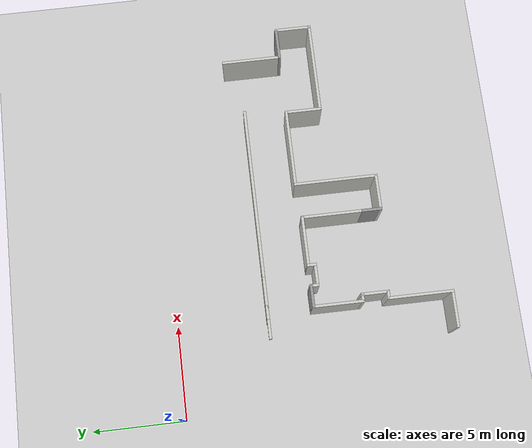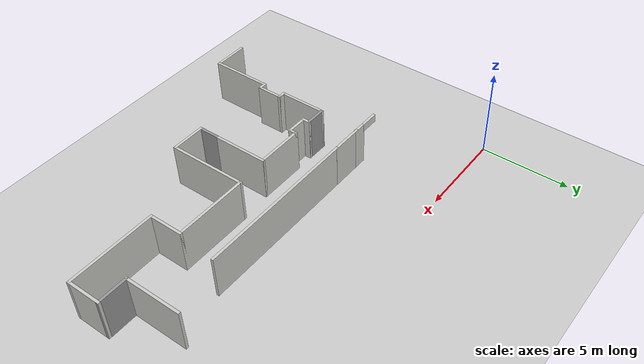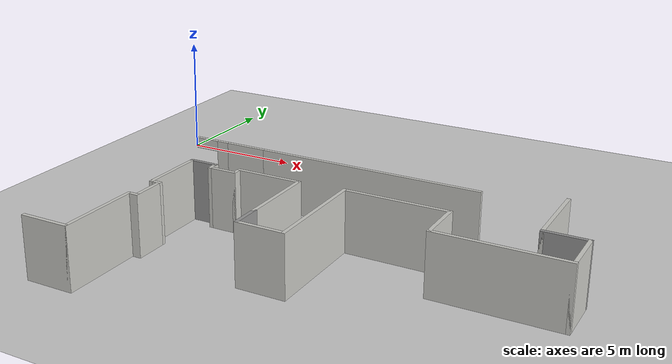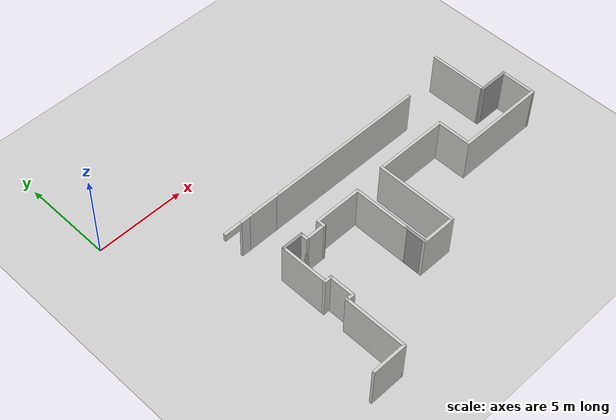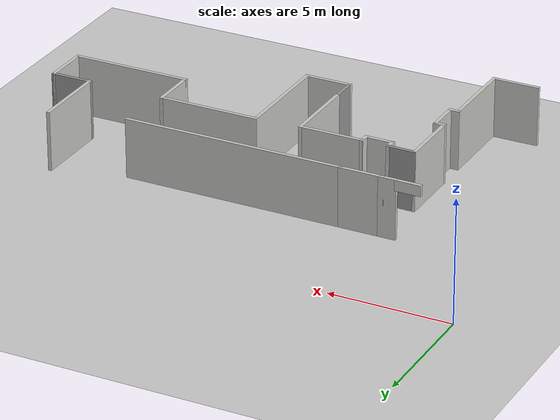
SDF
<sdf version="1.7">
 <world name="default">
  <model name="ground_plane">
   <static>1</static>
   <link name="link">
    <collision name="collision">
     <geometry><plane><normal>0 0 1</normal><size>100 100</size></plane></geometry>
     <surface>
      <contact><collide_bitmask>65535</collide_bitmask></contact>
      <friction><ode><mu>100</mu><mu2>50</mu2></ode></friction>
     </surface>
    </collision>
    <visual name="visual">
     <cast_shadows>0</cast_shadows>
     <geometry><plane><normal>0 0 1</normal><size>100 100</size></plane></geometry>
     <material>
      <script><uri>file://media/materials/scripts/gazebo.material</uri><name>Gazebo/Grey</name></script>
     </material>
    </visual>
   </link>
  </model>
  <model name="map_depo">
   <link name="Wall_102">
    <pose>-3.05165 -3.52199 0 0 -0 3.14071</pose>
    <inertial>
     <mass>1</mass>
     <inertia><ixx>1</ixx><ixy>0</ixy><ixz>0</ixz><iyy>1</iyy><iyz>0</iyz><izz>1</izz></inertia>
    </inertial>
    <visual name="Wall_102_Visual">
     <pose>0 0 1.25 0 -0 0</pose>
     <geometry><box><size>1.87377 0.15 2.5</size></box></geometry>
     <material>
      <script><uri>file://media/materials/scripts/gazebo.material</uri><name>Gazebo/CeilingTiled</name></script>
      <ambient>1 1 1 1</ambient>
      <shader type="pixel"><normal_map>__default__</normal_map></shader>
      <diffuse>1 1 1 1</diffuse>
      <specular>0 0 0 1</specular>
      <emissive>0 0 0 1</emissive>
     </material>
     <meta><layer>0</layer></meta>
    </visual>
    <collision name="Wall_102_Collision">
     <pose>0 0 1.25 0 -0 0</pose>
     <geometry><box><size>1.87377 0.15 2.5</size></box></geometry>
     <surface>
      <friction>
       <ode><mu>1</mu><mu2>1</mu2><fdir1>0 0 0</fdir1><slip1>0</slip1><slip2>0</slip2></ode>
       <torsional>
        <coefficient>1</coefficient>
        <patch_radius>0</patch_radius>
        <surface_radius>0</surface_radius>
        <use_patch_radius>1</use_patch_radius>
        <ode><slip>0</slip></ode>
       </torsional>
      </friction>
      <bounce><restitution_coefficient>0</restitution_coefficient><threshold>1e+06</threshold></bounce>
      <contact>
       <collide_without_contact>0</collide_without_contact>
       <collide_without_contact_bitmask>1</collide_without_contact_bitmask>
       <collide_bitmask>1</collide_bitmask>
       <ode>
        <soft_cfm>0</soft_cfm>
        <soft_erp>0.2</soft_erp>
        <kp>1e+13</kp>
        <kd>1</kd>
        <max_vel>0.01</max_vel>
        <min_depth>0</min_depth>
       </ode>
       <bullet>
        <split_impulse>1</split_impulse>
        <split_impulse_penetration_threshold>-0.01</split_impulse_penetration_threshold>
        <soft_cfm>0</soft_cfm>
        <soft_erp>0.2</soft_erp>
        <kp>1e+13</kp>
        <kd>1</kd>
       </bullet>
      </contact>
     </surface>
    </collision>
   </link>
   <link name="Wall_61">
    <pose>-4.13 -3.52116 0 0 -0 3.14159</pose>
    <inertial>
     <mass>1</mass>
     <inertia><ixx>1</ixx><ixy>0</ixy><ixz>0</ixz><iyy>1</iyy><iyz>0</iyz><izz>1</izz></inertia>
    </inertial>
    <visual name="Wall_61_Visual">
     <pose>0 0 1.25 0 -0 0</pose>
     <geometry><box><size>0.75 0.15 2.5</size></box></geometry>
     <material>
      <script><uri>file://media/materials/scripts/gazebo.material</uri><name>Gazebo/CeilingTiled</name></script>
      <ambient>1 1 1 1</ambient>
      <shader type="pixel"><normal_map>__default__</normal_map></shader>
      <diffuse>1 1 1 1</diffuse>
      <specular>0 0 0 1</specular>
      <emissive>0 0 0 1</emissive>
     </material>
     <meta><layer>0</layer></meta>
    </visual>
    <collision name="Wall_61_Collision">
     <pose>0 0 1.25 0 -0 0</pose>
     <geometry><box><size>0.75 0.15 2.5</size></box></geometry>
     <surface>
      <friction>
       <ode><mu>1</mu><mu2>1</mu2><fdir1>0 0 0</fdir1><slip1>0</slip1><slip2>0</slip2></ode>
       <torsional>
        <coefficient>1</coefficient>
        <patch_radius>0</patch_radius>
        <surface_radius>0</surface_radius>
        <use_patch_radius>1</use_patch_radius>
        <ode><slip>0</slip></ode>
       </torsional>
      </friction>
      <bounce><restitution_coefficient>0</restitution_coefficient><threshold>1e+06</threshold></bounce>
      <contact>
       <collide_without_contact>0</collide_without_contact>
       <collide_without_contact_bitmask>1</collide_without_contact_bitmask>
       <collide_bitmask>1</collide_bitmask>
       <ode>
        <soft_cfm>0</soft_cfm>
        <soft_erp>0.2</soft_erp>
        <kp>1e+13</kp>
        <kd>1</kd>
        <max_vel>0.01</max_vel>
        <min_depth>0</min_depth>
       </ode>
       <bullet>
        <split_impulse>1</split_impulse>
        <split_impulse_penetration_threshold>-0.01</split_impulse_penetration_threshold>
        <soft_cfm>0</soft_cfm>
        <soft_erp>0.2</soft_erp>
        <kp>1e+13</kp>
        <kd>1</kd>
       </bullet>
      </contact>
     </surface>
    </collision>
   </link>
   <link name="Wall_61_clone">
    <pose>-4.97754 -3.51916 1.02597 0 -0 3.14159</pose>
    <inertial>
     <mass>0.255432</mass>
     <inertia>
      <ixx>0.004691</ixx>
      <ixy>0</ixy>
      <ixz>0</ixz>
      <iyy>0.0288842</iyy>
      <iyz>0</iyz>
      <izz>0.025151</izz>
     </inertia>
    </inertial>
    <visual name="Wall_61_Visual">
     <pose>0 0 1.25 0 -0 0</pose>
     <geometry><box><size>1.0766 0.15 0.444836</size></box></geometry>
     <material>
      <script><uri>file://media/materials/scripts/gazebo.material</uri><name>Gazebo/CeilingTiled</name></script>
      <ambient>1 1 1 1</ambient>
      <shader type="pixel"><normal_map>__default__</normal_map></shader>
      <diffuse>1 1 1 1</diffuse>
      <specular>0 0 0 1</specular>
      <emissive>0 0 0 1</emissive>
     </material>
     <meta><layer>0</layer></meta>
    </visual>
    <collision name="Wall_61_Collision">
     <pose>0 0 1.25 0 -0 0</pose>
     <geometry><box><size>1.0766 0.15 0.444836</size></box></geometry>
     <surface>
      <friction>
       <ode><mu>1</mu><mu2>1</mu2><fdir1>0 0 0</fdir1><slip1>0</slip1><slip2>0</slip2></ode>
       <torsional>
        <coefficient>1</coefficient>
        <patch_radius>0</patch_radius>
        <surface_radius>0</surface_radius>
        <use_patch_radius>1</use_patch_radius>
        <ode><slip>0</slip></ode>
       </torsional>
      </friction>
      <bounce><restitution_coefficient>0</restitution_coefficient><threshold>1e+06</threshold></bounce>
      <contact>
       <collide_without_contact>0</collide_without_contact>
       <collide_without_contact_bitmask>1</collide_without_contact_bitmask>
       <collide_bitmask>1</collide_bitmask>
       <ode>
        <soft_cfm>0</soft_cfm>
        <soft_erp>0.2</soft_erp>
        <kp>1e+13</kp>
        <kd>1</kd>
        <max_vel>0.01</max_vel>
        <min_depth>0</min_depth>
       </ode>
       <bullet>
        <split_impulse>1</split_impulse>
        <split_impulse_penetration_threshold>-0.01</split_impulse_penetration_threshold>
        <soft_cfm>0</soft_cfm>
        <soft_erp>0.2</soft_erp>
        <kp>1e+13</kp>
        <kd>1</kd>
       </bullet>
      </contact>
     </surface>
    </collision>
   </link>
   <link name="Wall_71">
    <pose>-5.02509 -13.235 0 0 -0 0</pose>
    <visual name="Wall_71_Visual">
     <pose>0 0 1.25 0 -0 0</pose>
     <geometry><box><size>2 0.15 2.5</size></box></geometry>
     <material>
      <script><uri>file://media/materials/scripts/gazebo.material</uri><name>Gazebo/CeilingTiled</name></script>
      <ambient>1 1 1 1</ambient>
      <shader type="pixel"/>
     </material>
     <meta><layer>0</layer></meta>
    </visual>
    <collision name="Wall_71_Collision">
     <pose>0 0 1.25 0 -0 0</pose>
     <geometry><box><size>2 0.15 2.5</size></box></geometry>
     <surface>
      <friction>
       <ode><mu>1</mu><mu2>1</mu2><fdir1>0 0 0</fdir1><slip1>0</slip1><slip2>0</slip2></ode>
       <torsional>
        <coefficient>1</coefficient>
        <patch_radius>0</patch_radius>
        <surface_radius>0</surface_radius>
        <use_patch_radius>1</use_patch_radius>
        <ode><slip>0</slip></ode>
       </torsional>
      </friction>
      <bounce><restitution_coefficient>0</restitution_coefficient><threshold>1e+06</threshold></bounce>
      <contact>
       <collide_without_contact>0</collide_without_contact>
       <collide_without_contact_bitmask>1</collide_without_contact_bitmask>
       <collide_bitmask>1</collide_bitmask>
       <ode>
        <soft_cfm>0</soft_cfm>
        <soft_erp>0.2</soft_erp>
        <kp>1e+13</kp>
        <kd>1</kd>
        <max_vel>0.01</max_vel>
        <min_depth>0</min_depth>
       </ode>
       <bullet>
        <split_impulse>1</split_impulse>
        <split_impulse_penetration_threshold>-0.01</split_impulse_penetration_threshold>
        <soft_cfm>0</soft_cfm>
        <soft_erp>0.2</soft_erp>
        <kp>1e+13</kp>
        <kd>1</kd>
       </bullet>
      </contact>
     </surface>
    </collision>
   </link>
   <link name="Wall_72">
    <pose>-4.10009 -11.56 0 0 -0 1.5708</pose>
    <visual name="Wall_72_Visual">
     <pose>0 0 1.25 0 -0 0</pose>
     <geometry><box><size>3.5 0.15 2.5</size></box></geometry>
     <material>
      <script><uri>file://media/materials/scripts/gazebo.material</uri><name>Gazebo/CeilingTiled</name></script>
      <ambient>1 1 1 1</ambient>
      <shader type="pixel"/>
     </material>
     <meta><layer>0</layer></meta>
    </visual>
    <collision name="Wall_72_Collision">
     <pose>0 0 1.25 0 -0 0</pose>
     <geometry><box><size>3.5 0.15 2.5</size></box></geometry>
     <surface>
      <friction>
       <ode><mu>1</mu><mu2>1</mu2><fdir1>0 0 0</fdir1><slip1>0</slip1><slip2>0</slip2></ode>
       <torsional>
        <coefficient>1</coefficient>
        <patch_radius>0</patch_radius>
        <surface_radius>0</surface_radius>
        <use_patch_radius>1</use_patch_radius>
        <ode><slip>0</slip></ode>
       </torsional>
      </friction>
      <bounce><restitution_coefficient>0</restitution_coefficient><threshold>1e+06</threshold></bounce>
      <contact>
       <collide_without_contact>0</collide_without_contact>
       <collide_without_contact_bitmask>1</collide_without_contact_bitmask>
       <collide_bitmask>1</collide_bitmask>
       <ode>
        <soft_cfm>0</soft_cfm>
        <soft_erp>0.2</soft_erp>
        <kp>1e+13</kp>
        <kd>1</kd>
        <max_vel>0.01</max_vel>
        <min_depth>0</min_depth>
       </ode>
       <bullet>
        <split_impulse>1</split_impulse>
        <split_impulse_penetration_threshold>-0.01</split_impulse_penetration_threshold>
        <soft_cfm>0</soft_cfm>
        <soft_erp>0.2</soft_erp>
        <kp>1e+13</kp>
        <kd>1</kd>
       </bullet>
      </contact>
     </surface>
    </collision>
   </link>
   <link name="Wall_73">
    <pose>-3.92509 -9.88497 0 0 -0 0</pose>
    <visual name="Wall_73_Visual">
     <pose>0 0 1.25 0 -0 0</pose>
     <geometry><box><size>0.5 0.15 2.5</size></box></geometry>
     <material>
      <script><uri>file://media/materials/scripts/gazebo.material</uri><name>Gazebo/CeilingTiled</name></script>
      <ambient>1 1 1 1</ambient>
      <shader type="pixel"/>
     </material>
     <meta><layer>0</layer></meta>
    </visual>
    <collision name="Wall_73_Collision">
     <pose>0 0 1.25 0 -0 0</pose>
     <geometry><box><size>0.5 0.15 2.5</size></box></geometry>
     <surface>
      <friction>
       <ode><mu>1</mu><mu2>1</mu2><fdir1>0 0 0</fdir1><slip1>0</slip1><slip2>0</slip2></ode>
       <torsional>
        <coefficient>1</coefficient>
        <patch_radius>0</patch_radius>
        <surface_radius>0</surface_radius>
        <use_patch_radius>1</use_patch_radius>
        <ode><slip>0</slip></ode>
       </torsional>
      </friction>
      <bounce><restitution_coefficient>0</restitution_coefficient><threshold>1e+06</threshold></bounce>
      <contact>
       <collide_without_contact>0</collide_without_contact>
       <collide_without_contact_bitmask>1</collide_without_contact_bitmask>
       <collide_bitmask>1</collide_bitmask>
       <ode>
        <soft_cfm>0</soft_cfm>
        <soft_erp>0.2</soft_erp>
        <kp>1e+13</kp>
        <kd>1</kd>
        <max_vel>0.01</max_vel>
        <min_depth>0</min_depth>
       </ode>
       <bullet>
        <split_impulse>1</split_impulse>
        <split_impulse_penetration_threshold>-0.01</split_impulse_penetration_threshold>
        <soft_cfm>0</soft_cfm>
        <soft_erp>0.2</soft_erp>
        <kp>1e+13</kp>
        <kd>1</kd>
       </bullet>
      </contact>
     </surface>
    </collision>
   </link>
   <link name="Wall_74">
    <pose>-3.75009 -9.20997 0 0 -0 1.5708</pose>
    <visual name="Wall_74_Visual">
     <pose>0 0 1.25 0 -0 0</pose>
     <geometry><box><size>1.5 0.15 2.5</size></box></geometry>
     <material>
      <script><uri>file://media/materials/scripts/gazebo.material</uri><name>Gazebo/CeilingTiled</name></script>
      <ambient>1 1 1 1</ambient>
      <shader type="pixel"/>
     </material>
     <meta><layer>0</layer></meta>
    </visual>
    <collision name="Wall_74_Collision">
     <pose>0 0 1.25 0 -0 0</pose>
     <geometry><box><size>1.5 0.15 2.5</size></box></geometry>
     <surface>
      <friction>
       <ode><mu>1</mu><mu2>1</mu2><fdir1>0 0 0</fdir1><slip1>0</slip1><slip2>0</slip2></ode>
       <torsional>
        <coefficient>1</coefficient>
        <patch_radius>0</patch_radius>
        <surface_radius>0</surface_radius>
        <use_patch_radius>1</use_patch_radius>
        <ode><slip>0</slip></ode>
       </torsional>
      </friction>
      <bounce><restitution_coefficient>0</restitution_coefficient><threshold>1e+06</threshold></bounce>
      <contact>
       <collide_without_contact>0</collide_without_contact>
       <collide_without_contact_bitmask>1</collide_without_contact_bitmask>
       <collide_bitmask>1</collide_bitmask>
       <ode>
        <soft_cfm>0</soft_cfm>
        <soft_erp>0.2</soft_erp>
        <kp>1e+13</kp>
        <kd>1</kd>
        <max_vel>0.01</max_vel>
        <min_depth>0</min_depth>
       </ode>
       <bullet>
        <split_impulse>1</split_impulse>
        <split_impulse_penetration_threshold>-0.01</split_impulse_penetration_threshold>
        <soft_cfm>0</soft_cfm>
        <soft_erp>0.2</soft_erp>
        <kp>1e+13</kp>
        <kd>1</kd>
       </bullet>
      </contact>
     </surface>
    </collision>
   </link>
   <link name="Wall_75">
    <pose>-3.92509 -8.53497 0 0 -0 3.14159</pose>
    <visual name="Wall_75_Visual">
     <pose>0 0 1.25 0 -0 0</pose>
     <geometry><box><size>0.5 0.15 2.5</size></box></geometry>
     <material>
      <script><uri>file://media/materials/scripts/gazebo.material</uri><name>Gazebo/CeilingTiled</name></script>
      <ambient>1 1 1 1</ambient>
      <shader type="pixel"/>
     </material>
     <meta><layer>0</layer></meta>
    </visual>
    <collision name="Wall_75_Collision">
     <pose>0 0 1.25 0 -0 0</pose>
     <geometry><box><size>0.5 0.15 2.5</size></box></geometry>
     <surface>
      <friction>
       <ode><mu>1</mu><mu2>1</mu2><fdir1>0 0 0</fdir1><slip1>0</slip1><slip2>0</slip2></ode>
       <torsional>
        <coefficient>1</coefficient>
        <patch_radius>0</patch_radius>
        <surface_radius>0</surface_radius>
        <use_patch_radius>1</use_patch_radius>
        <ode><slip>0</slip></ode>
       </torsional>
      </friction>
      <bounce><restitution_coefficient>0</restitution_coefficient><threshold>1e+06</threshold></bounce>
      <contact>
       <collide_without_contact>0</collide_without_contact>
       <collide_without_contact_bitmask>1</collide_without_contact_bitmask>
       <collide_bitmask>1</collide_bitmask>
       <ode>
        <soft_cfm>0</soft_cfm>
        <soft_erp>0.2</soft_erp>
        <kp>1e+13</kp>
        <kd>1</kd>
        <max_vel>0.01</max_vel>
        <min_depth>0</min_depth>
       </ode>
       <bullet>
        <split_impulse>1</split_impulse>
        <split_impulse_penetration_threshold>-0.01</split_impulse_penetration_threshold>
        <soft_cfm>0</soft_cfm>
        <soft_erp>0.2</soft_erp>
        <kp>1e+13</kp>
        <kd>1</kd>
       </bullet>
      </contact>
     </surface>
    </collision>
   </link>
   <link name="Wall_76">
    <pose>-4.10009 -7.23497 0 0 -0 1.5708</pose>
    <visual name="Wall_76_Visual">
     <pose>0 0 1.25 0 -0 0</pose>
     <geometry><box><size>2.75 0.15 2.5</size></box></geometry>
     <material>
      <script><uri>file://media/materials/scripts/gazebo.material</uri><name>Gazebo/CeilingTiled</name></script>
      <ambient>1 1 1 1</ambient>
      <shader type="pixel"/>
     </material>
     <meta><layer>0</layer></meta>
    </visual>
    <collision name="Wall_76_Collision">
     <pose>0 0 1.25 0 -0 0</pose>
     <geometry><box><size>2.75 0.15 2.5</size></box></geometry>
     <surface>
      <friction>
       <ode><mu>1</mu><mu2>1</mu2><fdir1>0 0 0</fdir1><slip1>0</slip1><slip2>0</slip2></ode>
       <torsional>
        <coefficient>1</coefficient>
        <patch_radius>0</patch_radius>
        <surface_radius>0</surface_radius>
        <use_patch_radius>1</use_patch_radius>
        <ode><slip>0</slip></ode>
       </torsional>
      </friction>
      <bounce><restitution_coefficient>0</restitution_coefficient><threshold>1e+06</threshold></bounce>
      <contact>
       <collide_without_contact>0</collide_without_contact>
       <collide_without_contact_bitmask>1</collide_without_contact_bitmask>
       <collide_bitmask>1</collide_bitmask>
       <ode>
        <soft_cfm>0</soft_cfm>
        <soft_erp>0.2</soft_erp>
        <kp>1e+13</kp>
        <kd>1</kd>
        <max_vel>0.01</max_vel>
        <min_depth>0</min_depth>
       </ode>
       <bullet>
        <split_impulse>1</split_impulse>
        <split_impulse_penetration_threshold>-0.01</split_impulse_penetration_threshold>
        <soft_cfm>0</soft_cfm>
        <soft_erp>0.2</soft_erp>
        <kp>1e+13</kp>
        <kd>1</kd>
       </bullet>
      </contact>
     </surface>
    </collision>
   </link>
   <link name="Wall_78">
    <pose>-3.55009 -5.93497 0 0 -0 0</pose>
    <visual name="Wall_78_Visual">
     <pose>0 0 1.25 0 -0 0</pose>
     <geometry><box><size>1.25 0.15 2.5</size></box></geometry>
     <material>
      <script><uri>file://media/materials/scripts/gazebo.material</uri><name>Gazebo/Grey</name></script>
      <ambient>1 1 1 1</ambient>
      <shader type="pixel"/>
     </material>
     <meta><layer>0</layer></meta>
    </visual>
    <collision name="Wall_78_Collision">
     <pose>0 0 1.25 0 -0 0</pose>
     <geometry><box><size>1.25 0.15 2.5</size></box></geometry>
     <surface>
      <friction>
       <ode><mu>1</mu><mu2>1</mu2><fdir1>0 0 0</fdir1><slip1>0</slip1><slip2>0</slip2></ode>
       <torsional>
        <coefficient>1</coefficient>
        <patch_radius>0</patch_radius>
        <surface_radius>0</surface_radius>
        <use_patch_radius>1</use_patch_radius>
        <ode><slip>0</slip></ode>
       </torsional>
      </friction>
      <bounce><restitution_coefficient>0</restitution_coefficient><threshold>1e+06</threshold></bounce>
      <contact>
       <collide_without_contact>0</collide_without_contact>
       <collide_without_contact_bitmask>1</collide_without_contact_bitmask>
       <collide_bitmask>1</collide_bitmask>
       <ode>
        <soft_cfm>0</soft_cfm>
        <soft_erp>0.2</soft_erp>
        <kp>1e+13</kp>
        <kd>1</kd>
        <max_vel>0.01</max_vel>
        <min_depth>0</min_depth>
       </ode>
       <bullet>
        <split_impulse>1</split_impulse>
        <split_impulse_penetration_threshold>-0.01</split_impulse_penetration_threshold>
        <soft_cfm>0</soft_cfm>
        <soft_erp>0.2</soft_erp>
        <kp>1e+13</kp>
        <kd>1</kd>
       </bullet>
      </contact>
     </surface>
    </collision>
   </link>
   <link name="Wall_79">
    <pose>-3.00009 -6.10997 0 0 0 -1.5708</pose>
    <visual name="Wall_79_Visual">
     <pose>0 0 1.25 0 -0 0</pose>
     <geometry><box><size>0.5 0.15 2.5</size></box></geometry>
     <material>
      <script><uri>file://media/materials/scripts/gazebo.material</uri><name>Gazebo/CeilingTiled</name></script>
      <ambient>1 1 1 1</ambient>
      <shader type="pixel"/>
     </material>
     <meta><layer>0</layer></meta>
    </visual>
    <collision name="Wall_79_Collision">
     <pose>0 0 1.25 0 -0 0</pose>
     <geometry><box><size>0.5 0.15 2.5</size></box></geometry>
     <surface>
      <friction>
       <ode><mu>1</mu><mu2>1</mu2><fdir1>0 0 0</fdir1><slip1>0</slip1><slip2>0</slip2></ode>
       <torsional>
        <coefficient>1</coefficient>
        <patch_radius>0</patch_radius>
        <surface_radius>0</surface_radius>
        <use_patch_radius>1</use_patch_radius>
        <ode><slip>0</slip></ode>
       </torsional>
      </friction>
      <bounce><restitution_coefficient>0</restitution_coefficient><threshold>1e+06</threshold></bounce>
      <contact>
       <collide_without_contact>0</collide_without_contact>
       <collide_without_contact_bitmask>1</collide_without_contact_bitmask>
       <collide_bitmask>1</collide_bitmask>
       <ode>
        <soft_cfm>0</soft_cfm>
        <soft_erp>0.2</soft_erp>
        <kp>1e+13</kp>
        <kd>1</kd>
        <max_vel>0.01</max_vel>
        <min_depth>0</min_depth>
       </ode>
       <bullet>
        <split_impulse>1</split_impulse>
        <split_impulse_penetration_threshold>-0.01</split_impulse_penetration_threshold>
        <soft_cfm>0</soft_cfm>
        <soft_erp>0.2</soft_erp>
        <kp>1e+13</kp>
        <kd>1</kd>
       </bullet>
      </contact>
     </surface>
    </collision>
   </link>
   <link name="Wall_80">
    <pose>-2.45009 -6.28497 0 0 -0 0</pose>
    <visual name="Wall_80_Visual">
     <pose>0 0 1.25 0 -0 0</pose>
     <geometry><box><size>1.25 0.15 2.5</size></box></geometry>
     <material>
      <script><uri>file://media/materials/scripts/gazebo.material</uri><name>Gazebo/CeilingTiled</name></script>
      <ambient>1 1 1 1</ambient>
      <shader type="pixel"/>
     </material>
     <meta><layer>0</layer></meta>
    </visual>
    <collision name="Wall_80_Collision">
     <pose>0 0 1.25 0 -0 0</pose>
     <geometry><box><size>1.25 0.15 2.5</size></box></geometry>
     <surface>
      <friction>
       <ode><mu>1</mu><mu2>1</mu2><fdir1>0 0 0</fdir1><slip1>0</slip1><slip2>0</slip2></ode>
       <torsional>
        <coefficient>1</coefficient>
        <patch_radius>0</patch_radius>
        <surface_radius>0</surface_radius>
        <use_patch_radius>1</use_patch_radius>
        <ode><slip>0</slip></ode>
       </torsional>
      </friction>
      <bounce><restitution_coefficient>0</restitution_coefficient><threshold>1e+06</threshold></bounce>
      <contact>
       <collide_without_contact>0</collide_without_contact>
       <collide_without_contact_bitmask>1</collide_without_contact_bitmask>
       <collide_bitmask>1</collide_bitmask>
       <ode>
        <soft_cfm>0</soft_cfm>
        <soft_erp>0.2</soft_erp>
        <kp>1e+13</kp>
        <kd>1</kd>
        <max_vel>0.01</max_vel>
        <min_depth>0</min_depth>
       </ode>
       <bullet>
        <split_impulse>1</split_impulse>
        <split_impulse_penetration_threshold>-0.01</split_impulse_penetration_threshold>
        <soft_cfm>0</soft_cfm>
        <soft_erp>0.2</soft_erp>
        <kp>1e+13</kp>
        <kd>1</kd>
       </bullet>
      </contact>
     </surface>
    </collision>
   </link>
   <link name="Wall_81">
    <pose>-1.90009 -6.10997 0 0 -0 1.5708</pose>
    <visual name="Wall_81_Visual">
     <pose>0 0 1.25 0 -0 0</pose>
     <geometry><box><size>0.5 0.15 2.5</size></box></geometry>
     <material>
      <script><uri>file://media/materials/scripts/gazebo.material</uri><name>Gazebo/CeilingTiled</name></script>
      <ambient>1 1 1 1</ambient>
      <shader type="pixel"/>
     </material>
     <meta><layer>0</layer></meta>
    </visual>
    <collision name="Wall_81_Collision">
     <pose>0 0 1.25 0 -0 0</pose>
     <geometry><box><size>0.5 0.15 2.5</size></box></geometry>
     <surface>
      <friction>
       <ode><mu>1</mu><mu2>1</mu2><fdir1>0 0 0</fdir1><slip1>0</slip1><slip2>0</slip2></ode>
       <torsional>
        <coefficient>1</coefficient>
        <patch_radius>0</patch_radius>
        <surface_radius>0</surface_radius>
        <use_patch_radius>1</use_patch_radius>
        <ode><slip>0</slip></ode>
       </torsional>
      </friction>
      <bounce><restitution_coefficient>0</restitution_coefficient><threshold>1e+06</threshold></bounce>
      <contact>
       <collide_without_contact>0</collide_without_contact>
       <collide_without_contact_bitmask>1</collide_without_contact_bitmask>
       <collide_bitmask>1</collide_bitmask>
       <ode>
        <soft_cfm>0</soft_cfm>
        <soft_erp>0.2</soft_erp>
        <kp>1e+13</kp>
        <kd>1</kd>
        <max_vel>0.01</max_vel>
        <min_depth>0</min_depth>
       </ode>
       <bullet>
        <split_impulse>1</split_impulse>
        <split_impulse_penetration_threshold>-0.01</split_impulse_penetration_threshold>
        <soft_cfm>0</soft_cfm>
        <soft_erp>0.2</soft_erp>
        <kp>1e+13</kp>
        <kd>1</kd>
       </bullet>
      </contact>
     </surface>
    </collision>
   </link>
   <link name="Wall_82">
    <pose>-0.600086 -5.93497 0 0 -0 0</pose>
    <visual name="Wall_82_Visual">
     <pose>0 0 1.25 0 -0 0</pose>
     <geometry><box><size>2.75 0.15 2.5</size></box></geometry>
     <material>
      <script><uri>file://media/materials/scripts/gazebo.material</uri><name>Gazebo/CeilingTiled</name></script>
      <ambient>1 1 1 1</ambient>
      <shader type="pixel"/>
     </material>
     <meta><layer>0</layer></meta>
    </visual>
    <collision name="Wall_82_Collision">
     <pose>0 0 1.25 0 -0 0</pose>
     <geometry><box><size>2.75 0.15 2.5</size></box></geometry>
     <surface>
      <friction>
       <ode><mu>1</mu><mu2>1</mu2><fdir1>0 0 0</fdir1><slip1>0</slip1><slip2>0</slip2></ode>
       <torsional>
        <coefficient>1</coefficient>
        <patch_radius>0</patch_radius>
        <surface_radius>0</surface_radius>
        <use_patch_radius>1</use_patch_radius>
        <ode><slip>0</slip></ode>
       </torsional>
      </friction>
      <bounce><restitution_coefficient>0</restitution_coefficient><threshold>1e+06</threshold></bounce>
      <contact>
       <collide_without_contact>0</collide_without_contact>
       <collide_without_contact_bitmask>1</collide_without_contact_bitmask>
       <collide_bitmask>1</collide_bitmask>
       <ode>
        <soft_cfm>0</soft_cfm>
        <soft_erp>0.2</soft_erp>
        <kp>1e+13</kp>
        <kd>1</kd>
        <max_vel>0.01</max_vel>
        <min_depth>0</min_depth>
       </ode>
       <bullet>
        <split_impulse>1</split_impulse>
        <split_impulse_penetration_threshold>-0.01</split_impulse_penetration_threshold>
        <soft_cfm>0</soft_cfm>
        <soft_erp>0.2</soft_erp>
        <kp>1e+13</kp>
        <kd>1</kd>
       </bullet>
      </contact>
     </surface>
    </collision>
   </link>
   <link name="Wall_83">
    <pose>0.699914 -7.48497 0 0 0 -1.5708</pose>
    <visual name="Wall_83_Visual">
     <pose>0 0 1.25 0 -0 0</pose>
     <geometry><box><size>3.25 0.15 2.5</size></box></geometry>
     <material>
      <script><uri>file://media/materials/scripts/gazebo.material</uri><name>Gazebo/CeilingTiled</name></script>
      <ambient>1 1 1 1</ambient>
      <shader type="pixel"/>
     </material>
     <meta><layer>0</layer></meta>
    </visual>
    <collision name="Wall_83_Collision">
     <pose>0 0 1.25 0 -0 0</pose>
     <geometry><box><size>3.25 0.15 2.5</size></box></geometry>
     <surface>
      <friction>
       <ode><mu>1</mu><mu2>1</mu2><fdir1>0 0 0</fdir1><slip1>0</slip1><slip2>0</slip2></ode>
       <torsional>
        <coefficient>1</coefficient>
        <patch_radius>0</patch_radius>
        <surface_radius>0</surface_radius>
        <use_patch_radius>1</use_patch_radius>
        <ode><slip>0</slip></ode>
       </torsional>
      </friction>
      <bounce><restitution_coefficient>0</restitution_coefficient><threshold>1e+06</threshold></bounce>
      <contact>
       <collide_without_contact>0</collide_without_contact>
       <collide_without_contact_bitmask>1</collide_without_contact_bitmask>
       <collide_bitmask>1</collide_bitmask>
       <ode>
        <soft_cfm>0</soft_cfm>
        <soft_erp>0.2</soft_erp>
        <kp>1e+13</kp>
        <kd>1</kd>
        <max_vel>0.01</max_vel>
        <min_depth>0</min_depth>
       </ode>
       <bullet>
        <split_impulse>1</split_impulse>
        <split_impulse_penetration_threshold>-0.01</split_impulse_penetration_threshold>
        <soft_cfm>0</soft_cfm>
        <soft_erp>0.2</soft_erp>
        <kp>1e+13</kp>
        <kd>1</kd>
       </bullet>
      </contact>
     </surface>
    </collision>
   </link>
   <link name="Wall_85">
    <pose>0.699914 -9.58497 0 0 0 -1.5708</pose>
    <visual name="Wall_85_Visual">
     <pose>0 0 1.25 0 -0 0</pose>
     <geometry><box><size>1.25 0.15 2.5</size></box></geometry>
     <material>
      <script><uri>file://media/materials/scripts/gazebo.material</uri><name>Gazebo/Grey</name></script>
      <ambient>1 1 1 1</ambient>
      <shader type="pixel"/>
     </material>
     <meta><layer>0</layer></meta>
    </visual>
    <collision name="Wall_85_Collision">
     <pose>0 0 1.25 0 -0 0</pose>
     <geometry><box><size>1.25 0.15 2.5</size></box></geometry>
     <surface>
      <friction>
       <ode><mu>1</mu><mu2>1</mu2><fdir1>0 0 0</fdir1><slip1>0</slip1><slip2>0</slip2></ode>
       <torsional>
        <coefficient>1</coefficient>
        <patch_radius>0</patch_radius>
        <surface_radius>0</surface_radius>
        <use_patch_radius>1</use_patch_radius>
        <ode><slip>0</slip></ode>
       </torsional>
      </friction>
      <bounce><restitution_coefficient>0</restitution_coefficient><threshold>1e+06</threshold></bounce>
      <contact>
       <collide_without_contact>0</collide_without_contact>
       <collide_without_contact_bitmask>1</collide_without_contact_bitmask>
       <collide_bitmask>1</collide_bitmask>
       <ode>
        <soft_cfm>0</soft_cfm>
        <soft_erp>0.2</soft_erp>
        <kp>1e+13</kp>
        <kd>1</kd>
        <max_vel>0.01</max_vel>
        <min_depth>0</min_depth>
       </ode>
       <bullet>
        <split_impulse>1</split_impulse>
        <split_impulse_penetration_threshold>-0.01</split_impulse_penetration_threshold>
        <soft_cfm>0</soft_cfm>
        <soft_erp>0.2</soft_erp>
        <kp>1e+13</kp>
        <kd>1</kd>
       </bullet>
      </contact>
     </surface>
    </collision>
   </link>
   <link name="Wall_86">
    <pose>1.62491 -10.135 0 0 -0 0</pose>
    <visual name="Wall_86_Visual">
     <pose>0 0 1.25 0 -0 0</pose>
     <geometry><box><size>2 0.15 2.5</size></box></geometry>
     <material>
      <script><uri>file://media/materials/scripts/gazebo.material</uri><name>Gazebo/CeilingTiled</name></script>
      <ambient>1 1 1 1</ambient>
      <shader type="pixel"/>
     </material>
     <meta><layer>0</layer></meta>
    </visual>
    <collision name="Wall_86_Collision">
     <pose>0 0 1.25 0 -0 0</pose>
     <geometry><box><size>2 0.15 2.5</size></box></geometry>
     <surface>
      <friction>
       <ode><mu>1</mu><mu2>1</mu2><fdir1>0 0 0</fdir1><slip1>0</slip1><slip2>0</slip2></ode>
       <torsional>
        <coefficient>1</coefficient>
        <patch_radius>0</patch_radius>
        <surface_radius>0</surface_radius>
        <use_patch_radius>1</use_patch_radius>
        <ode><slip>0</slip></ode>
       </torsional>
      </friction>
      <bounce><restitution_coefficient>0</restitution_coefficient><threshold>1e+06</threshold></bounce>
      <contact>
       <collide_without_contact>0</collide_without_contact>
       <collide_without_contact_bitmask>1</collide_without_contact_bitmask>
       <collide_bitmask>1</collide_bitmask>
       <ode>
        <soft_cfm>0</soft_cfm>
        <soft_erp>0.2</soft_erp>
        <kp>1e+13</kp>
        <kd>1</kd>
        <max_vel>0.01</max_vel>
        <min_depth>0</min_depth>
       </ode>
       <bullet>
        <split_impulse>1</split_impulse>
        <split_impulse_penetration_threshold>-0.01</split_impulse_penetration_threshold>
        <soft_cfm>0</soft_cfm>
        <soft_erp>0.2</soft_erp>
        <kp>1e+13</kp>
        <kd>1</kd>
       </bullet>
      </contact>
     </surface>
    </collision>
   </link>
   <link name="Wall_87">
    <pose>2.54991 -7.95997 0 0 -0 1.5708</pose>
    <visual name="Wall_87_Visual">
     <pose>0 0 1.25 0 -0 0</pose>
     <geometry><box><size>4.5 0.15 2.5</size></box></geometry>
     <material>
      <script><uri>file://media/materials/scripts/gazebo.material</uri><name>Gazebo/CeilingTiled</name></script>
      <ambient>1 1 1 1</ambient>
      <shader type="pixel"/>
     </material>
     <meta><layer>0</layer></meta>
    </visual>
    <collision name="Wall_87_Collision">
     <pose>0 0 1.25 0 -0 0</pose>
     <geometry><box><size>4.5 0.15 2.5</size></box></geometry>
     <surface>
      <friction>
       <ode><mu>1</mu><mu2>1</mu2><fdir1>0 0 0</fdir1><slip1>0</slip1><slip2>0</slip2></ode>
       <torsional>
        <coefficient>1</coefficient>
        <patch_radius>0</patch_radius>
        <surface_radius>0</surface_radius>
        <use_patch_radius>1</use_patch_radius>
        <ode><slip>0</slip></ode>
       </torsional>
      </friction>
      <bounce><restitution_coefficient>0</restitution_coefficient><threshold>1e+06</threshold></bounce>
      <contact>
       <collide_without_contact>0</collide_without_contact>
       <collide_without_contact_bitmask>1</collide_without_contact_bitmask>
       <collide_bitmask>1</collide_bitmask>
       <ode>
        <soft_cfm>0</soft_cfm>
        <soft_erp>0.2</soft_erp>
        <kp>1e+13</kp>
        <kd>1</kd>
        <max_vel>0.01</max_vel>
        <min_depth>0</min_depth>
       </ode>
       <bullet>
        <split_impulse>1</split_impulse>
        <split_impulse_penetration_threshold>-0.01</split_impulse_penetration_threshold>
        <soft_cfm>0</soft_cfm>
        <soft_erp>0.2</soft_erp>
        <kp>1e+13</kp>
        <kd>1</kd>
       </bullet>
      </contact>
     </surface>
    </collision>
   </link>
   <link name="Wall_88">
    <pose>4.59991 -5.78497 0 0 -0 0</pose>
    <visual name="Wall_88_Visual">
     <pose>0 0 1.25 0 -0 0</pose>
     <geometry><box><size>4.25 0.15 2.5</size></box></geometry>
     <material>
      <script><uri>file://media/materials/scripts/gazebo.material</uri><name>Gazebo/CeilingTiled</name></script>
      <ambient>1 1 1 1</ambient>
      <shader type="pixel"/>
     </material>
     <meta><layer>0</layer></meta>
    </visual>
    <collision name="Wall_88_Collision">
     <pose>0 0 1.25 0 -0 0</pose>
     <geometry><box><size>4.25 0.15 2.5</size></box></geometry>
     <surface>
      <friction>
       <ode><mu>1</mu><mu2>1</mu2><fdir1>0 0 0</fdir1><slip1>0</slip1><slip2>0</slip2></ode>
       <torsional>
        <coefficient>1</coefficient>
        <patch_radius>0</patch_radius>
        <surface_radius>0</surface_radius>
        <use_patch_radius>1</use_patch_radius>
        <ode><slip>0</slip></ode>
       </torsional>
      </friction>
      <bounce><restitution_coefficient>0</restitution_coefficient><threshold>1e+06</threshold></bounce>
      <contact>
       <collide_without_contact>0</collide_without_contact>
       <collide_without_contact_bitmask>1</collide_without_contact_bitmask>
       <collide_bitmask>1</collide_bitmask>
       <ode>
        <soft_cfm>0</soft_cfm>
        <soft_erp>0.2</soft_erp>
        <kp>1e+13</kp>
        <kd>1</kd>
        <max_vel>0.01</max_vel>
        <min_depth>0</min_depth>
       </ode>
       <bullet>
        <split_impulse>1</split_impulse>
        <split_impulse_penetration_threshold>-0.01</split_impulse_penetration_threshold>
        <soft_cfm>0</soft_cfm>
        <soft_erp>0.2</soft_erp>
        <kp>1e+13</kp>
        <kd>1</kd>
       </bullet>
      </contact>
     </surface>
    </collision>
   </link>
   <link name="Wall_89">
    <pose>6.64991 -6.70997 0 0 0 -1.5708</pose>
    <visual name="Wall_89_Visual">
     <pose>0 0 1.25 0 -0 0</pose>
     <geometry><box><size>2 0.15 2.5</size></box></geometry>
     <material>
      <script><uri>file://media/materials/scripts/gazebo.material</uri><name>Gazebo/CeilingTiled</name></script>
      <ambient>1 1 1 1</ambient>
      <shader type="pixel"/>
     </material>
     <meta><layer>0</layer></meta>
    </visual>
    <collision name="Wall_89_Collision">
     <pose>0 0 1.25 0 -0 0</pose>
     <geometry><box><size>2 0.15 2.5</size></box></geometry>
     <surface>
      <friction>
       <ode><mu>1</mu><mu2>1</mu2><fdir1>0 0 0</fdir1><slip1>0</slip1><slip2>0</slip2></ode>
       <torsional>
        <coefficient>1</coefficient>
        <patch_radius>0</patch_radius>
        <surface_radius>0</surface_radius>
        <use_patch_radius>1</use_patch_radius>
        <ode><slip>0</slip></ode>
       </torsional>
      </friction>
      <bounce><restitution_coefficient>0</restitution_coefficient><threshold>1e+06</threshold></bounce>
      <contact>
       <collide_without_contact>0</collide_without_contact>
       <collide_without_contact_bitmask>1</collide_without_contact_bitmask>
       <collide_bitmask>1</collide_bitmask>
       <ode>
        <soft_cfm>0</soft_cfm>
        <soft_erp>0.2</soft_erp>
        <kp>1e+13</kp>
        <kd>1</kd>
        <max_vel>0.01</max_vel>
        <min_depth>0</min_depth>
       </ode>
       <bullet>
        <split_impulse>1</split_impulse>
        <split_impulse_penetration_threshold>-0.01</split_impulse_penetration_threshold>
        <soft_cfm>0</soft_cfm>
        <soft_erp>0.2</soft_erp>
        <kp>1e+13</kp>
        <kd>1</kd>
       </bullet>
      </contact>
     </surface>
    </collision>
   </link>
   <link name="Wall_90">
    <pose>9.07491 -7.63497 0 0 -0 0</pose>
    <visual name="Wall_90_Visual">
     <pose>0 0 1.25 0 -0 0</pose>
     <geometry><box><size>5 0.15 2.5</size></box></geometry>
     <material>
      <script><uri>file://media/materials/scripts/gazebo.material</uri><name>Gazebo/CeilingTiled</name></script>
      <ambient>1 1 1 1</ambient>
      <shader type="pixel"/>
     </material>
     <meta><layer>0</layer></meta>
    </visual>
    <collision name="Wall_90_Collision">
     <pose>0 0 1.25 0 -0 0</pose>
     <geometry><box><size>5 0.15 2.5</size></box></geometry>
     <surface>
      <friction>
       <ode><mu>1</mu><mu2>1</mu2><fdir1>0 0 0</fdir1><slip1>0</slip1><slip2>0</slip2></ode>
       <torsional>
        <coefficient>1</coefficient>
        <patch_radius>0</patch_radius>
        <surface_radius>0</surface_radius>
        <use_patch_radius>1</use_patch_radius>
        <ode><slip>0</slip></ode>
       </torsional>
      </friction>
      <bounce><restitution_coefficient>0</restitution_coefficient><threshold>1e+06</threshold></bounce>
      <contact>
       <collide_without_contact>0</collide_without_contact>
       <collide_without_contact_bitmask>1</collide_without_contact_bitmask>
       <collide_bitmask>1</collide_bitmask>
       <ode>
        <soft_cfm>0</soft_cfm>
        <soft_erp>0.2</soft_erp>
        <kp>1e+13</kp>
        <kd>1</kd>
        <max_vel>0.01</max_vel>
        <min_depth>0</min_depth>
       </ode>
       <bullet>
        <split_impulse>1</split_impulse>
        <split_impulse_penetration_threshold>-0.01</split_impulse_penetration_threshold>
        <soft_cfm>0</soft_cfm>
        <soft_erp>0.2</soft_erp>
        <kp>1e+13</kp>
        <kd>1</kd>
       </bullet>
      </contact>
     </surface>
    </collision>
   </link>
   <link name="Wall_91">
    <pose>11.4999 -6.70997 0 0 -0 1.5708</pose>
    <visual name="Wall_91_Visual">
     <pose>0 0 1.25 0 -0 0</pose>
     <geometry><box><size>2 0.15 2.5</size></box></geometry>
     <material>
      <script><uri>file://media/materials/scripts/gazebo.material</uri><name>Gazebo/CeilingTiled</name></script>
      <ambient>1 1 1 1</ambient>
      <shader type="pixel"/>
     </material>
     <meta><layer>0</layer></meta>
    </visual>
    <collision name="Wall_91_Collision">
     <pose>0 0 1.25 0 -0 0</pose>
     <geometry><box><size>2 0.15 2.5</size></box></geometry>
     <surface>
      <friction>
       <ode><mu>1</mu><mu2>1</mu2><fdir1>0 0 0</fdir1><slip1>0</slip1><slip2>0</slip2></ode>
       <torsional>
        <coefficient>1</coefficient>
        <patch_radius>0</patch_radius>
        <surface_radius>0</surface_radius>
        <use_patch_radius>1</use_patch_radius>
        <ode><slip>0</slip></ode>
       </torsional>
      </friction>
      <bounce><restitution_coefficient>0</restitution_coefficient><threshold>1e+06</threshold></bounce>
      <contact>
       <collide_without_contact>0</collide_without_contact>
       <collide_without_contact_bitmask>1</collide_without_contact_bitmask>
       <collide_bitmask>1</collide_bitmask>
       <ode>
        <soft_cfm>0</soft_cfm>
        <soft_erp>0.2</soft_erp>
        <kp>1e+13</kp>
        <kd>1</kd>
        <max_vel>0.01</max_vel>
        <min_depth>0</min_depth>
       </ode>
       <bullet>
        <split_impulse>1</split_impulse>
        <split_impulse_penetration_threshold>-0.01</split_impulse_penetration_threshold>
        <soft_cfm>0</soft_cfm>
        <soft_erp>0.2</soft_erp>
        <kp>1e+13</kp>
        <kd>1</kd>
       </bullet>
      </contact>
     </surface>
    </collision>
   </link>
   <link name="Wall_92">
    <pose>10.6999 -5.78497 0 0 -0 3.14159</pose>
    <visual name="Wall_92_Visual">
     <pose>0 0 1.25 0 -0 0</pose>
     <geometry><box><size>1.75 0.15 2.5</size></box></geometry>
     <material>
      <script><uri>file://media/materials/scripts/gazebo.material</uri><name>Gazebo/Grey</name></script>
      <ambient>1 1 1 1</ambient>
      <shader type="pixel"/>
     </material>
     <meta><layer>0</layer></meta>
    </visual>
    <collision name="Wall_92_Collision">
     <pose>0 0 1.25 0 -0 0</pose>
     <geometry><box><size>1.75 0.15 2.5</size></box></geometry>
     <surface>
      <friction>
       <ode><mu>1</mu><mu2>1</mu2><fdir1>0 0 0</fdir1><slip1>0</slip1><slip2>0</slip2></ode>
       <torsional>
        <coefficient>1</coefficient>
        <patch_radius>0</patch_radius>
        <surface_radius>0</surface_radius>
        <use_patch_radius>1</use_patch_radius>
        <ode><slip>0</slip></ode>
       </torsional>
      </friction>
      <bounce><restitution_coefficient>0</restitution_coefficient><threshold>1e+06</threshold></bounce>
      <contact>
       <collide_without_contact>0</collide_without_contact>
       <collide_without_contact_bitmask>1</collide_without_contact_bitmask>
       <collide_bitmask>1</collide_bitmask>
       <ode>
        <soft_cfm>0</soft_cfm>
        <soft_erp>0.2</soft_erp>
        <kp>1e+13</kp>
        <kd>1</kd>
        <max_vel>0.01</max_vel>
        <min_depth>0</min_depth>
       </ode>
       <bullet>
        <split_impulse>1</split_impulse>
        <split_impulse_penetration_threshold>-0.01</split_impulse_penetration_threshold>
        <soft_cfm>0</soft_cfm>
        <soft_erp>0.2</soft_erp>
        <kp>1e+13</kp>
        <kd>1</kd>
       </bullet>
      </contact>
     </surface>
    </collision>
   </link>
   <link name="Wall_93">
    <pose>9.89991 -4.23497 0 0 -0 1.5708</pose>
    <visual name="Wall_93_Visual">
     <pose>0 0 1.25 0 -0 0</pose>
     <geometry><box><size>3.25 0.15 2.5</size></box></geometry>
     <material>
      <script><uri>file://media/materials/scripts/gazebo.material</uri><name>Gazebo/CeilingTiled</name></script>
      <ambient>1 1 1 1</ambient>
      <shader type="pixel"/>
     </material>
     <meta><layer>0</layer></meta>
    </visual>
    <collision name="Wall_93_Collision">
     <pose>0 0 1.25 0 -0 0</pose>
     <geometry><box><size>3.25 0.15 2.5</size></box></geometry>
     <surface>
      <friction>
       <ode><mu>1</mu><mu2>1</mu2><fdir1>0 0 0</fdir1><slip1>0</slip1><slip2>0</slip2></ode>
       <torsional>
        <coefficient>1</coefficient>
        <patch_radius>0</patch_radius>
        <surface_radius>0</surface_radius>
        <use_patch_radius>1</use_patch_radius>
        <ode><slip>0</slip></ode>
       </torsional>
      </friction>
      <bounce><restitution_coefficient>0</restitution_coefficient><threshold>1e+06</threshold></bounce>
      <contact>
       <collide_without_contact>0</collide_without_contact>
       <collide_without_contact_bitmask>1</collide_without_contact_bitmask>
       <collide_bitmask>1</collide_bitmask>
       <ode>
        <soft_cfm>0</soft_cfm>
        <soft_erp>0.2</soft_erp>
        <kp>1e+13</kp>
        <kd>1</kd>
        <max_vel>0.01</max_vel>
        <min_depth>0</min_depth>
       </ode>
       <bullet>
        <split_impulse>1</split_impulse>
        <split_impulse_penetration_threshold>-0.01</split_impulse_penetration_threshold>
        <soft_cfm>0</soft_cfm>
        <soft_erp>0.2</soft_erp>
        <kp>1e+13</kp>
        <kd>1</kd>
       </bullet>
      </contact>
     </surface>
    </collision>
   </link>
   <link name="Wall_98">
    <pose>2.34991 -3.52419 0 0 -0 3.14159</pose>
    <visual name="Wall_98_Visual">
     <pose>0 0 1.25 0 -0 0</pose>
     <geometry><box><size>9.25 0.15 2.5</size></box></geometry>
     <material>
      <script><uri>file://media/materials/scripts/gazebo.material</uri><name>Gazebo/CeilingTiled</name></script>
      <ambient>1 1 1 1</ambient>
      <shader type="pixel"/>
     </material>
     <meta><layer>0</layer></meta>
    </visual>
    <collision name="Wall_98_Collision">
     <pose>0 0 1.25 0 -0 0</pose>
     <geometry><box><size>9.25 0.15 2.5</size></box></geometry>
     <surface>
      <friction>
       <ode><mu>1</mu><mu2>1</mu2><fdir1>0 0 0</fdir1><slip1>0</slip1><slip2>0</slip2></ode>
       <torsional>
        <coefficient>1</coefficient>
        <patch_radius>0</patch_radius>
        <surface_radius>0</surface_radius>
        <use_patch_radius>1</use_patch_radius>
        <ode><slip>0</slip></ode>
       </torsional>
      </friction>
      <bounce><restitution_coefficient>0</restitution_coefficient><threshold>1e+06</threshold></bounce>
      <contact>
       <collide_without_contact>0</collide_without_contact>
       <collide_without_contact_bitmask>1</collide_without_contact_bitmask>
       <collide_bitmask>1</collide_bitmask>
       <ode>
        <soft_cfm>0</soft_cfm>
        <soft_erp>0.2</soft_erp>
        <kp>1e+13</kp>
        <kd>1</kd>
        <max_vel>0.01</max_vel>
        <min_depth>0</min_depth>
       </ode>
       <bullet>
        <split_impulse>1</split_impulse>
        <split_impulse_penetration_threshold>-0.01</split_impulse_penetration_threshold>
        <soft_cfm>0</soft_cfm>
        <soft_erp>0.2</soft_erp>
        <kp>1e+13</kp>
        <kd>1</kd>
       </bullet>
      </contact>
     </surface>
    </collision>
   </link>
   <static>1</static>
   <pose>9.09356 -1.35985 0 0 -0 0</pose>
  </model>
 </world>
</sdf>
